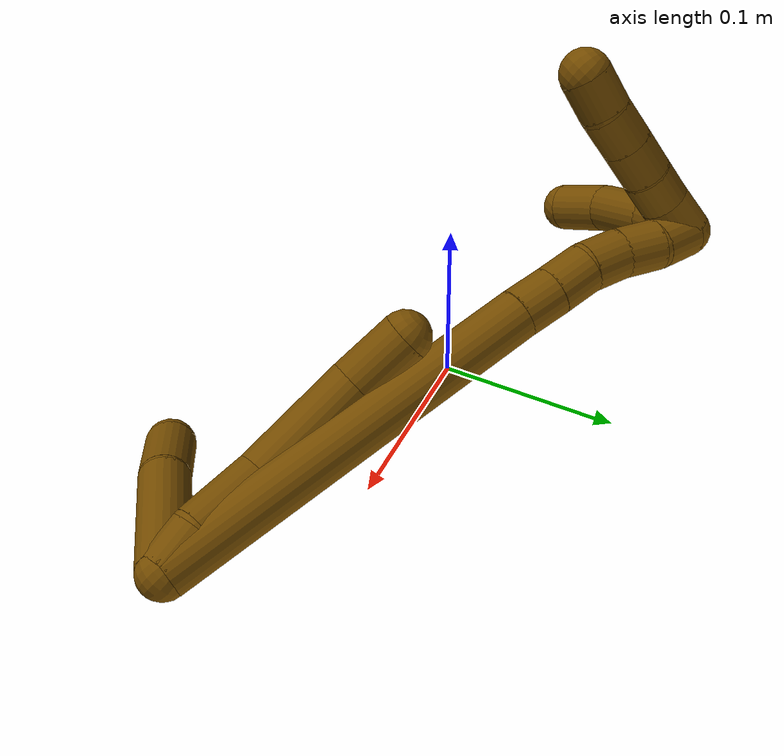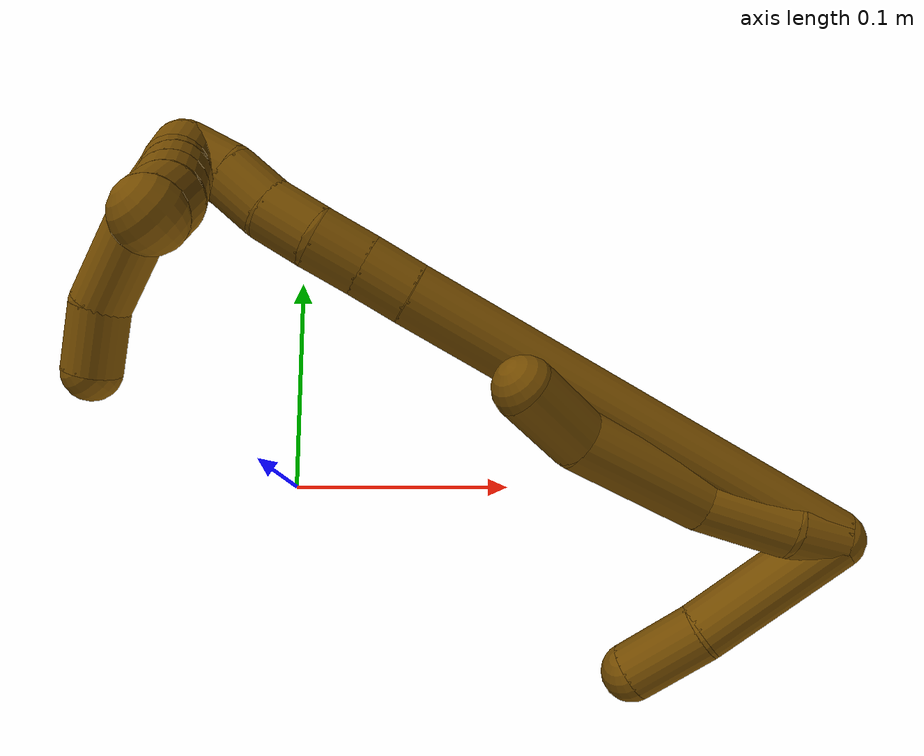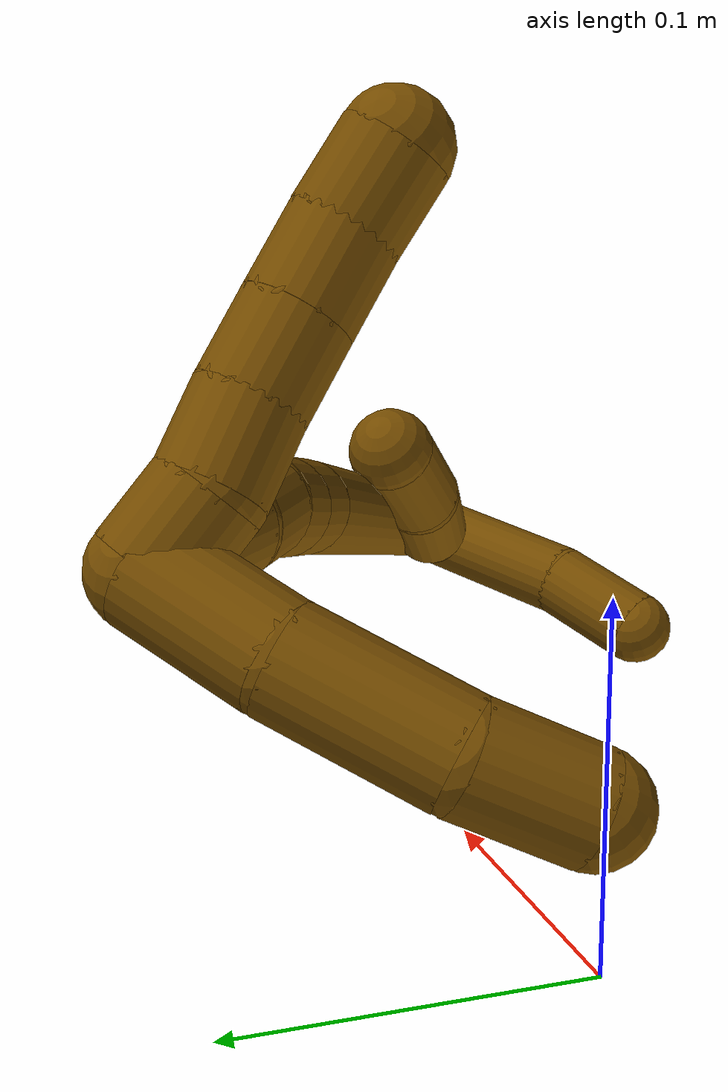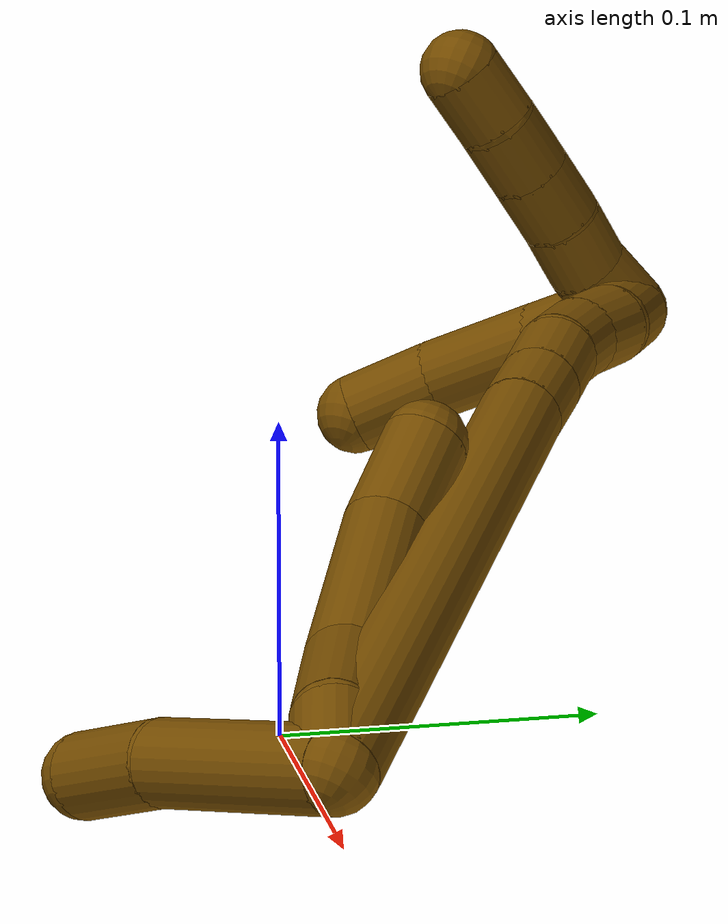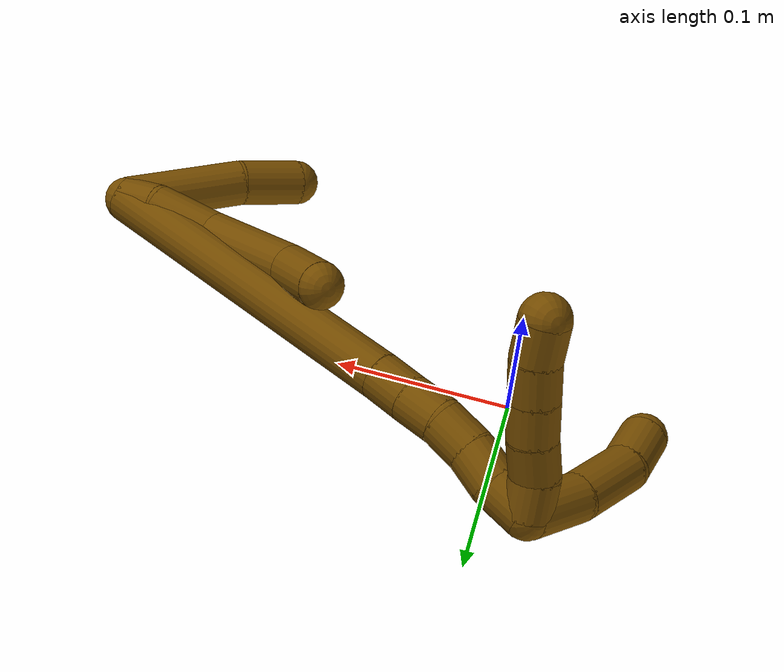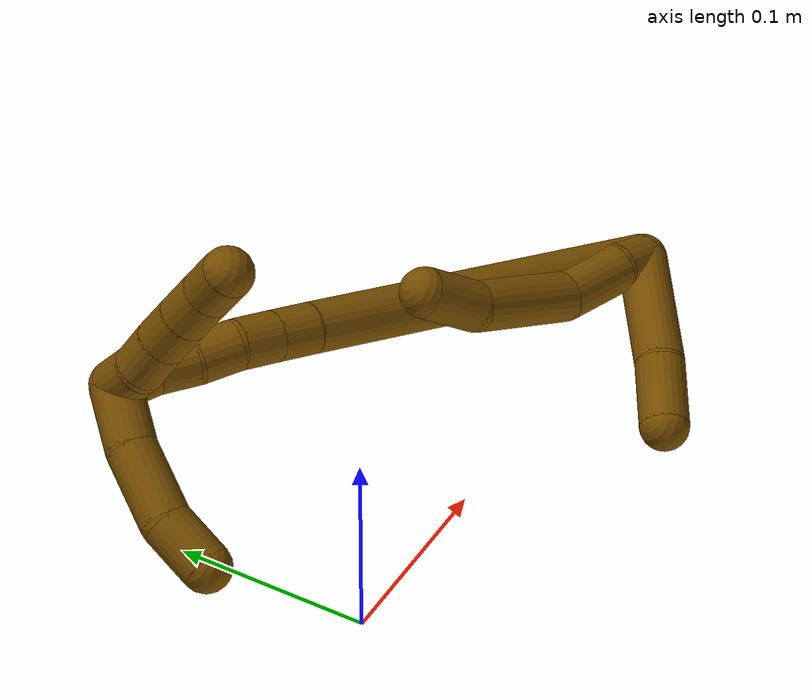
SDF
<sdf version="1.7">
 <world name="default">
  <model name="12">
   <static>0</static>
   <link name="12">
    <collision name="collision-cylinder-e_1_2_8">
     <pose>-0.006284 -0.000947 0.008793 0.107261 -0.61776 -0.034256</pose>
     <geometry><cylinder><radius>0.0125</radius><length>0.021697</length></cylinder></geometry>
     <surface>
      <friction><ode><mu>1.16</mu><mu2>1.16</mu2><slip1>0</slip1><slip2>0</slip2></ode></friction>
      <contact><ode><kp>1e+06</kp><kd>1</kd><max_vel>0</max_vel><min_depth>0.001</min_depth></ode></contact>
     </surface>
    </collision>
    <visual name="visual-cylinder-e_1_2_8">
     <pose>-0.006284 -0.000947 0.008793 0.107261 -0.61776 -0.034256</pose>
     <geometry><cylinder><radius>0.0125</radius><length>0.021697</length></cylinder></geometry>
     <material><ambient>0.466667 0.301961 0 1</ambient></material>
    </visual>
    <collision name="collision-cylinder-e_2_8_9">
     <pose>-0.025261 4e-06 0.031191 -0.138591 -0.745927 0.054301</pose>
     <geometry><cylinder><radius>0.0125</radius><length>0.037408</length></cylinder></geometry>
     <surface>
      <friction><ode><mu>1.16</mu><mu2>1.16</mu2><slip1>0</slip1><slip2>0</slip2></ode></friction>
      <contact><ode><kp>1e+06</kp><kd>1</kd><max_vel>0</max_vel><min_depth>0.001</min_depth></ode></contact>
     </surface>
    </collision>
    <visual name="visual-cylinder-e_2_8_9">
     <pose>-0.025261 4e-06 0.031191 -0.138591 -0.745927 0.054301</pose>
     <geometry><cylinder><radius>0.0125</radius><length>0.037408</length></cylinder></geometry>
     <material><ambient>0.466667 0.301961 0 1</ambient></material>
    </visual>
    <collision name="collision-cylinder-e_3_9_10">
     <pose>-0.051092 0.002686 0.071211 -0.029688 -0.46136 0.006973</pose>
     <geometry><cylinder><radius>0.0125</radius><length>0.059023</length></cylinder></geometry>
     <surface>
      <friction><ode><mu>1.16</mu><mu2>1.16</mu2><slip1>0</slip1><slip2>0</slip2></ode></friction>
      <contact><ode><kp>1e+06</kp><kd>1</kd><max_vel>0</max_vel><min_depth>0.001</min_depth></ode></contact>
     </surface>
    </collision>
    <visual name="visual-cylinder-e_3_9_10">
     <pose>-0.051092 0.002686 0.071211 -0.029688 -0.46136 0.006973</pose>
     <geometry><cylinder><radius>0.0125</radius><length>0.059023</length></cylinder></geometry>
     <material><ambient>0.466667 0.301961 0 1</ambient></material>
    </visual>
    <collision name="collision-cylinder-e_4_10_6">
     <pose>-0.066775 0.00434 0.113332 -0.055262 -0.160455 0.004444</pose>
     <geometry><cylinder><radius>0.0125</radius><length>0.031872</length></cylinder></geometry>
     <surface>
      <friction><ode><mu>1.16</mu><mu2>1.16</mu2><slip1>0</slip1><slip2>0</slip2></ode></friction>
      <contact><ode><kp>1e+06</kp><kd>1</kd><max_vel>0</max_vel><min_depth>0.001</min_depth></ode></contact>
     </surface>
    </collision>
    <visual name="visual-cylinder-e_4_10_6">
     <pose>-0.066775 0.00434 0.113332 -0.055262 -0.160455 0.004444</pose>
     <geometry><cylinder><radius>0.0125</radius><length>0.031872</length></cylinder></geometry>
     <material><ambient>0.466667 0.301961 0 1</ambient></material>
    </visual>
    <collision name="collision-cylinder-e_1_2_11">
     <pose>-0.029541 -0.014126 0.000456 1.53855 -1.12454 -1.09566</pose>
     <geometry><cylinder><radius>0.0125</radius><length>0.065496</length></cylinder></geometry>
     <surface>
      <friction><ode><mu>1.16</mu><mu2>1.16</mu2><slip1>0</slip1><slip2>0</slip2></ode></friction>
      <contact><ode><kp>1e+06</kp><kd>1</kd><max_vel>0</max_vel><min_depth>0.001</min_depth></ode></contact>
     </surface>
    </collision>
    <visual name="visual-cylinder-e_1_2_11">
     <pose>-0.029541 -0.014126 0.000456 1.53855 -1.12454 -1.09566</pose>
     <geometry><cylinder><radius>0.0125</radius><length>0.065496</length></cylinder></geometry>
     <material><ambient>0.466667 0.301961 0 1</ambient></material>
    </visual>
    <collision name="collision-cylinder-e_2_11_5">
     <pose>-0.075561 -0.033288 6.4e-05 1.7376 -1.27035 -1.43373</pose>
     <geometry><cylinder><radius>0.0125</radius><length>0.034504</length></cylinder></geometry>
     <surface>
      <friction><ode><mu>1.16</mu><mu2>1.16</mu2><slip1>0</slip1><slip2>0</slip2></ode></friction>
      <contact><ode><kp>1e+06</kp><kd>1</kd><max_vel>0</max_vel><min_depth>0.001</min_depth></ode></contact>
     </surface>
    </collision>
    <visual name="visual-cylinder-e_2_11_5">
     <pose>-0.075561 -0.033288 6.4e-05 1.7376 -1.27035 -1.43373</pose>
     <geometry><cylinder><radius>0.0125</radius><length>0.034504</length></cylinder></geometry>
     <material><ambient>0.466667 0.301961 0 1</ambient></material>
    </visual>
    <collision name="collision-cylinder-e_1_2_12">
     <pose>-0.049509 0.018242 0.083346 -0.215479 -0.525792 0.0582</pose>
     <geometry><cylinder><radius>0.0125</radius><length>0.197285</length></cylinder></geometry>
     <surface>
      <friction><ode><mu>1.16</mu><mu2>1.16</mu2><slip1>0</slip1><slip2>0</slip2></ode></friction>
      <contact><ode><kp>1e+06</kp><kd>1</kd><max_vel>0</max_vel><min_depth>0.001</min_depth></ode></contact>
     </surface>
    </collision>
    <visual name="visual-cylinder-e_1_2_12">
     <pose>-0.049509 0.018242 0.083346 -0.215479 -0.525792 0.0582</pose>
     <geometry><cylinder><radius>0.0125</radius><length>0.197285</length></cylinder></geometry>
     <material><ambient>0.466667 0.301961 0 1</ambient></material>
    </visual>
    <collision name="collision-cylinder-e_2_12_13">
     <pose>-0.104228 0.038777 0.175244 -0.261842 -0.531936 0.071711</pose>
     <geometry><cylinder><radius>0.0125</radius><length>0.020548</length></cylinder></geometry>
     <surface>
      <friction><ode><mu>1.16</mu><mu2>1.16</mu2><slip1>0</slip1><slip2>0</slip2></ode></friction>
      <contact><ode><kp>1e+06</kp><kd>1</kd><max_vel>0</max_vel><min_depth>0.001</min_depth></ode></contact>
     </surface>
    </collision>
    <visual name="visual-cylinder-e_2_12_13">
     <pose>-0.104228 0.038777 0.175244 -0.261842 -0.531936 0.071711</pose>
     <geometry><cylinder><radius>0.0125</radius><length>0.020548</length></cylinder></geometry>
     <material><ambient>0.466667 0.301961 0 1</ambient></material>
    </visual>
    <collision name="collision-cylinder-e_3_13_14">
     <pose>-0.114834 0.04316 0.192529 -0.234975 -0.541001 0.065436</pose>
     <geometry><cylinder><radius>0.0125</radius><length>0.020951</length></cylinder></geometry>
     <surface>
      <friction><ode><mu>1.16</mu><mu2>1.16</mu2><slip1>0</slip1><slip2>0</slip2></ode></friction>
      <contact><ode><kp>1e+06</kp><kd>1</kd><max_vel>0</max_vel><min_depth>0.001</min_depth></ode></contact>
     </surface>
    </collision>
    <visual name="visual-cylinder-e_3_13_14">
     <pose>-0.114834 0.04316 0.192529 -0.234975 -0.541001 0.065436</pose>
     <geometry><cylinder><radius>0.0125</radius><length>0.020951</length></cylinder></geometry>
     <material><ambient>0.466667 0.301961 0 1</ambient></material>
    </visual>
    <collision name="collision-cylinder-e_4_14_15">
     <pose>-0.126268 0.049167 0.208671 -0.486325 -0.624401 0.159792</pose>
     <geometry><cylinder><radius>0.0125</radius><length>0.020659</length></cylinder></geometry>
     <surface>
      <friction><ode><mu>1.16</mu><mu2>1.16</mu2><slip1>0</slip1><slip2>0</slip2></ode></friction>
      <contact><ode><kp>1e+06</kp><kd>1</kd><max_vel>0</max_vel><min_depth>0.001</min_depth></ode></contact>
     </surface>
    </collision>
    <visual name="visual-cylinder-e_4_14_15">
     <pose>-0.126268 0.049167 0.208671 -0.486325 -0.624401 0.159792</pose>
     <geometry><cylinder><radius>0.0125</radius><length>0.020659</length></cylinder></geometry>
     <material><ambient>0.466667 0.301961 0 1</ambient></material>
    </visual>
    <collision name="collision-cylinder-e_5_15_16">
     <pose>-0.137188 0.058298 0.223382 -0.620098 -0.498284 0.162669</pose>
     <geometry><cylinder><radius>0.0125</radius><length>0.020429</length></cylinder></geometry>
     <surface>
      <friction><ode><mu>1.16</mu><mu2>1.16</mu2><slip1>0</slip1><slip2>0</slip2></ode></friction>
      <contact><ode><kp>1e+06</kp><kd>1</kd><max_vel>0</max_vel><min_depth>0.001</min_depth></ode></contact>
     </surface>
    </collision>
    <visual name="visual-cylinder-e_5_15_16">
     <pose>-0.137188 0.058298 0.223382 -0.620098 -0.498284 0.162669</pose>
     <geometry><cylinder><radius>0.0125</radius><length>0.020429</length></cylinder></geometry>
     <material><ambient>0.466667 0.301961 0 1</ambient></material>
    </visual>
    <collision name="collision-cylinder-e_6_16_1">
     <pose>-0.148428 0.067074 0.237624 -0.474161 -0.683897 0.171581</pose>
     <geometry><cylinder><radius>0.0125</radius><length>0.020127</length></cylinder></geometry>
     <surface>
      <friction><ode><mu>1.16</mu><mu2>1.16</mu2><slip1>0</slip1><slip2>0</slip2></ode></friction>
      <contact><ode><kp>1e+06</kp><kd>1</kd><max_vel>0</max_vel><min_depth>0.001</min_depth></ode></contact>
     </surface>
    </collision>
    <visual name="visual-cylinder-e_6_16_1">
     <pose>-0.148428 0.067074 0.237624 -0.474161 -0.683897 0.171581</pose>
     <geometry><cylinder><radius>0.0125</radius><length>0.020127</length></cylinder></geometry>
     <material><ambient>0.466667 0.301961 0 1</ambient></material>
    </visual>
    <collision name="collision-cylinder-e_1_1_17">
     <pose>-0.169432 0.064515 0.240147 2.19589 -1.09491 -1.74526</pose>
     <geometry><cylinder><radius>0.0125</radius><length>0.032952</length></cylinder></geometry>
     <surface>
      <friction><ode><mu>1.16</mu><mu2>1.16</mu2><slip1>0</slip1><slip2>0</slip2></ode></friction>
      <contact><ode><kp>1e+06</kp><kd>1</kd><max_vel>0</max_vel><min_depth>0.001</min_depth></ode></contact>
     </surface>
    </collision>
    <visual name="visual-cylinder-e_1_1_17">
     <pose>-0.169432 0.064515 0.240147 2.19589 -1.09491 -1.74526</pose>
     <geometry><cylinder><radius>0.0125</radius><length>0.032952</length></cylinder></geometry>
     <material><ambient>0.466667 0.301961 0 1</ambient></material>
    </visual>
    <collision name="collision-cylinder-e_2_17_18">
     <pose>-0.199747 0.04947 0.228081 2.27941 -0.927252 -1.65416</pose>
     <geometry><cylinder><radius>0.0125</radius><length>0.039175</length></cylinder></geometry>
     <surface>
      <friction><ode><mu>1.16</mu><mu2>1.16</mu2><slip1>0</slip1><slip2>0</slip2></ode></friction>
      <contact><ode><kp>1e+06</kp><kd>1</kd><max_vel>0</max_vel><min_depth>0.001</min_depth></ode></contact>
     </surface>
    </collision>
    <visual name="visual-cylinder-e_2_17_18">
     <pose>-0.199747 0.04947 0.228081 2.27941 -0.927252 -1.65416</pose>
     <geometry><cylinder><radius>0.0125</radius><length>0.039175</length></cylinder></geometry>
     <material><ambient>0.466667 0.301961 0 1</ambient></material>
    </visual>
    <collision name="collision-cylinder-e_3_18_4">
     <pose>-0.223668 0.033081 0.212041 2.41457 -0.633605 -1.42262</pose>
     <geometry><cylinder><radius>0.0125</radius><length>0.027873</length></cylinder></geometry>
     <surface>
      <friction><ode><mu>1.16</mu><mu2>1.16</mu2><slip1>0</slip1><slip2>0</slip2></ode></friction>
      <contact><ode><kp>1e+06</kp><kd>1</kd><max_vel>0</max_vel><min_depth>0.001</min_depth></ode></contact>
     </surface>
    </collision>
    <visual name="visual-cylinder-e_3_18_4">
     <pose>-0.223668 0.033081 0.212041 2.41457 -0.633605 -1.42262</pose>
     <geometry><cylinder><radius>0.0125</radius><length>0.027873</length></cylinder></geometry>
     <material><ambient>0.466667 0.301961 0 1</ambient></material>
    </visual>
    <collision name="collision-cylinder-e_1_1_19">
     <pose>-0.152232 0.061109 0.246215 1.39916 0.258362 0.217782</pose>
     <geometry><cylinder><radius>0.0125</radius><length>0.02</length></cylinder></geometry>
     <surface>
      <friction><ode><mu>1.16</mu><mu2>1.16</mu2><slip1>0</slip1><slip2>0</slip2></ode></friction>
      <contact><ode><kp>1e+06</kp><kd>1</kd><max_vel>0</max_vel><min_depth>0.001</min_depth></ode></contact>
     </surface>
    </collision>
    <visual name="visual-cylinder-e_1_1_19">
     <pose>-0.152232 0.061109 0.246215 1.39916 0.258362 0.217782</pose>
     <geometry><cylinder><radius>0.0125</radius><length>0.02</length></cylinder></geometry>
     <material><ambient>0.466667 0.301961 0 1</ambient></material>
    </visual>
    <collision name="collision-cylinder-e_2_19_20">
     <pose>-0.144552 0.04319 0.249679 1.35805 0.538031 0.437873</pose>
     <geometry><cylinder><radius>0.0125</radius><length>0.02</length></cylinder></geometry>
     <surface>
      <friction><ode><mu>1.16</mu><mu2>1.16</mu2><slip1>0</slip1><slip2>0</slip2></ode></friction>
      <contact><ode><kp>1e+06</kp><kd>1</kd><max_vel>0</max_vel><min_depth>0.001</min_depth></ode></contact>
     </surface>
    </collision>
    <visual name="visual-cylinder-e_2_19_20">
     <pose>-0.144552 0.04319 0.249679 1.35805 0.538031 0.437873</pose>
     <geometry><cylinder><radius>0.0125</radius><length>0.02</length></cylinder></geometry>
     <material><ambient>0.466667 0.301961 0 1</ambient></material>
    </visual>
    <collision name="collision-cylinder-e_3_20_21">
     <pose>-0.135148 0.02597 0.253434 1.3543 0.442305 0.357646</pose>
     <geometry><cylinder><radius>0.0125</radius><length>0.02</length></cylinder></geometry>
     <surface>
      <friction><ode><mu>1.16</mu><mu2>1.16</mu2><slip1>0</slip1><slip2>0</slip2></ode></friction>
      <contact><ode><kp>1e+06</kp><kd>1</kd><max_vel>0</max_vel><min_depth>0.001</min_depth></ode></contact>
     </surface>
    </collision>
    <visual name="visual-cylinder-e_3_20_21">
     <pose>-0.135148 0.02597 0.253434 1.3543 0.442305 0.357646</pose>
     <geometry><cylinder><radius>0.0125</radius><length>0.02</length></cylinder></geometry>
     <material><ambient>0.466667 0.301961 0 1</ambient></material>
    </visual>
    <collision name="collision-cylinder-e_4_21_22">
     <pose>-0.126618 0.008287 0.257251 1.36208 0.438927 0.357661</pose>
     <geometry><cylinder><radius>0.0125</radius><length>0.02</length></cylinder></geometry>
     <surface>
      <friction><ode><mu>1.16</mu><mu2>1.16</mu2><slip1>0</slip1><slip2>0</slip2></ode></friction>
      <contact><ode><kp>1e+06</kp><kd>1</kd><max_vel>0</max_vel><min_depth>0.001</min_depth></ode></contact>
     </surface>
    </collision>
    <visual name="visual-cylinder-e_4_21_22">
     <pose>-0.126618 0.008287 0.257251 1.36208 0.438927 0.357661</pose>
     <geometry><cylinder><radius>0.0125</radius><length>0.02</length></cylinder></geometry>
     <material><ambient>0.466667 0.301961 0 1</ambient></material>
    </visual>
    <collision name="collision-cylinder-e_5_22_3">
     <pose>-0.119534 -0.00975 0.261894 1.27806 0.287378 0.214192</pose>
     <geometry><cylinder><radius>0.0125</radius><length>0.02</length></cylinder></geometry>
     <surface>
      <friction><ode><mu>1.16</mu><mu2>1.16</mu2><slip1>0</slip1><slip2>0</slip2></ode></friction>
      <contact><ode><kp>1e+06</kp><kd>1</kd><max_vel>0</max_vel><min_depth>0.001</min_depth></ode></contact>
     </surface>
    </collision>
    <visual name="visual-cylinder-e_5_22_3">
     <pose>-0.119534 -0.00975 0.261894 1.27806 0.287378 0.214192</pose>
     <geometry><cylinder><radius>0.0125</radius><length>0.02</length></cylinder></geometry>
     <material><ambient>0.466667 0.301961 0 1</ambient></material>
    </visual>
    <collision name="collision-sphere-3">
     <pose>-0.116699 -0.018932 0.264661 0 -0 0</pose>
     <geometry><sphere><radius>0.0125</radius></sphere></geometry>
     <surface>
      <friction><ode><mu>1.16</mu><mu2>1.16</mu2><slip1>0</slip1><slip2>0</slip2></ode></friction>
      <contact><ode><kp>1e+06</kp><kd>1</kd><max_vel>0</max_vel><min_depth>0.001</min_depth></ode></contact>
     </surface>
    </collision>
    <visual name="visual-sphere-3">
     <pose>-0.116699 -0.018932 0.264661 0 -0 0</pose>
     <geometry><sphere><radius>0.0125</radius></sphere></geometry>
     <material><ambient>0.466667 0.301961 0 1</ambient></material>
    </visual>
    <collision name="collision-sphere-22">
     <pose>-0.122368 -0.000568 0.259126 0 -0 0</pose>
     <geometry><sphere><radius>0.0125</radius></sphere></geometry>
     <surface>
      <friction><ode><mu>1.16</mu><mu2>1.16</mu2><slip1>0</slip1><slip2>0</slip2></ode></friction>
      <contact><ode><kp>1e+06</kp><kd>1</kd><max_vel>0</max_vel><min_depth>0.001</min_depth></ode></contact>
     </surface>
    </collision>
    <visual name="visual-sphere-22">
     <pose>-0.122368 -0.000568 0.259126 0 -0 0</pose>
     <geometry><sphere><radius>0.0125</radius></sphere></geometry>
     <material><ambient>0.466667 0.301961 0 1</ambient></material>
    </visual>
    <collision name="collision-sphere-21">
     <pose>-0.130867 0.017143 0.255375 0 -0 0</pose>
     <geometry><sphere><radius>0.0125</radius></sphere></geometry>
     <surface>
      <friction><ode><mu>1.16</mu><mu2>1.16</mu2><slip1>0</slip1><slip2>0</slip2></ode></friction>
      <contact><ode><kp>1e+06</kp><kd>1</kd><max_vel>0</max_vel><min_depth>0.001</min_depth></ode></contact>
     </surface>
    </collision>
    <visual name="visual-sphere-21">
     <pose>-0.130867 0.017143 0.255375 0 -0 0</pose>
     <geometry><sphere><radius>0.0125</radius></sphere></geometry>
     <material><ambient>0.466667 0.301961 0 1</ambient></material>
    </visual>
    <collision name="collision-sphere-20">
     <pose>-0.139428 0.034796 0.251492 0 -0 0</pose>
     <geometry><sphere><radius>0.0125</radius></sphere></geometry>
     <surface>
      <friction><ode><mu>1.16</mu><mu2>1.16</mu2><slip1>0</slip1><slip2>0</slip2></ode></friction>
      <contact><ode><kp>1e+06</kp><kd>1</kd><max_vel>0</max_vel><min_depth>0.001</min_depth></ode></contact>
     </surface>
    </collision>
    <visual name="visual-sphere-20">
     <pose>-0.139428 0.034796 0.251492 0 -0 0</pose>
     <geometry><sphere><radius>0.0125</radius></sphere></geometry>
     <material><ambient>0.466667 0.301961 0 1</ambient></material>
    </visual>
    <collision name="collision-sphere-19">
     <pose>-0.149677 0.051583 0.247866 0 -0 0</pose>
     <geometry><sphere><radius>0.0125</radius></sphere></geometry>
     <surface>
      <friction><ode><mu>1.16</mu><mu2>1.16</mu2><slip1>0</slip1><slip2>0</slip2></ode></friction>
      <contact><ode><kp>1e+06</kp><kd>1</kd><max_vel>0</max_vel><min_depth>0.001</min_depth></ode></contact>
     </surface>
    </collision>
    <visual name="visual-sphere-19">
     <pose>-0.149677 0.051583 0.247866 0 -0 0</pose>
     <geometry><sphere><radius>0.0125</radius></sphere></geometry>
     <material><ambient>0.466667 0.301961 0 1</ambient></material>
    </visual>
    <collision name="collision-sphere-11">
     <pose>-0.059082 -0.028253 0.000911 0 -0 0</pose>
     <geometry><sphere><radius>0.0125</radius></sphere></geometry>
     <surface>
      <friction><ode><mu>1.16</mu><mu2>1.16</mu2><slip1>0</slip1><slip2>0</slip2></ode></friction>
      <contact><ode><kp>1e+06</kp><kd>1</kd><max_vel>0</max_vel><min_depth>0.001</min_depth></ode></contact>
     </surface>
    </collision>
    <visual name="visual-sphere-11">
     <pose>-0.059082 -0.028253 0.000911 0 -0 0</pose>
     <geometry><sphere><radius>0.0125</radius></sphere></geometry>
     <material><ambient>0.466667 0.301961 0 1</ambient></material>
    </visual>
    <collision name="collision-sphere-6">
     <pose>-0.069321 0.005209 0.12904 0 -0 0</pose>
     <geometry><sphere><radius>0.0125</radius></sphere></geometry>
     <surface>
      <friction><ode><mu>1.16</mu><mu2>1.16</mu2><slip1>0</slip1><slip2>0</slip2></ode></friction>
      <contact><ode><kp>1e+06</kp><kd>1</kd><max_vel>0</max_vel><min_depth>0.001</min_depth></ode></contact>
     </surface>
    </collision>
    <visual name="visual-sphere-6">
     <pose>-0.069321 0.005209 0.12904 0 -0 0</pose>
     <geometry><sphere><radius>0.0125</radius></sphere></geometry>
     <material><ambient>0.466667 0.301961 0 1</ambient></material>
    </visual>
    <collision name="collision-sphere-10">
     <pose>-0.064229 0.003471 0.097625 0 -0 0</pose>
     <geometry><sphere><radius>0.0125</radius></sphere></geometry>
     <surface>
      <friction><ode><mu>1.16</mu><mu2>1.16</mu2><slip1>0</slip1><slip2>0</slip2></ode></friction>
      <contact><ode><kp>1e+06</kp><kd>1</kd><max_vel>0</max_vel><min_depth>0.001</min_depth></ode></contact>
     </surface>
    </collision>
    <visual name="visual-sphere-10">
     <pose>-0.064229 0.003471 0.097625 0 -0 0</pose>
     <geometry><sphere><radius>0.0125</radius></sphere></geometry>
     <material><ambient>0.466667 0.301961 0 1</ambient></material>
    </visual>
    <collision name="collision-sphere-9">
     <pose>-0.037954 0.001902 0.044797 0 -0 0</pose>
     <geometry><sphere><radius>0.0125</radius></sphere></geometry>
     <surface>
      <friction><ode><mu>1.16</mu><mu2>1.16</mu2><slip1>0</slip1><slip2>0</slip2></ode></friction>
      <contact><ode><kp>1e+06</kp><kd>1</kd><max_vel>0</max_vel><min_depth>0.001</min_depth></ode></contact>
     </surface>
    </collision>
    <visual name="visual-sphere-9">
     <pose>-0.037954 0.001902 0.044797 0 -0 0</pose>
     <geometry><sphere><radius>0.0125</radius></sphere></geometry>
     <material><ambient>0.466667 0.301961 0 1</ambient></material>
    </visual>
    <collision name="collision-sphere-2">
     <geometry><sphere><radius>0.0125</radius></sphere></geometry>
     <surface>
      <friction><ode><mu>1.16</mu><mu2>1.16</mu2><slip1>0</slip1><slip2>0</slip2></ode></friction>
      <contact><ode><kp>1e+06</kp><kd>1</kd><max_vel>0</max_vel><min_depth>0.001</min_depth></ode></contact>
     </surface>
    </collision>
    <visual name="visual-sphere-2">
     <geometry><sphere><radius>0.0125</radius></sphere></geometry>
     <material><ambient>0.466667 0.301961 0 1</ambient></material>
    </visual>
    <collision name="collision-sphere-8">
     <pose>-0.012567 -0.001894 0.017585 0 -0 0</pose>
     <geometry><sphere><radius>0.0125</radius></sphere></geometry>
     <surface>
      <friction><ode><mu>1.16</mu><mu2>1.16</mu2><slip1>0</slip1><slip2>0</slip2></ode></friction>
      <contact><ode><kp>1e+06</kp><kd>1</kd><max_vel>0</max_vel><min_depth>0.001</min_depth></ode></contact>
     </surface>
    </collision>
    <visual name="visual-sphere-8">
     <pose>-0.012567 -0.001894 0.017585 0 -0 0</pose>
     <geometry><sphere><radius>0.0125</radius></sphere></geometry>
     <material><ambient>0.466667 0.301961 0 1</ambient></material>
    </visual>
    <collision name="collision-sphere-5">
     <pose>-0.09204 -0.038322 -0.000784 0 -0 0</pose>
     <geometry><sphere><radius>0.0125</radius></sphere></geometry>
     <surface>
      <friction><ode><mu>1.16</mu><mu2>1.16</mu2><slip1>0</slip1><slip2>0</slip2></ode></friction>
      <contact><ode><kp>1e+06</kp><kd>1</kd><max_vel>0</max_vel><min_depth>0.001</min_depth></ode></contact>
     </surface>
    </collision>
    <visual name="visual-sphere-5">
     <pose>-0.09204 -0.038322 -0.000784 0 -0 0</pose>
     <geometry><sphere><radius>0.0125</radius></sphere></geometry>
     <material><ambient>0.466667 0.301961 0 1</ambient></material>
    </visual>
    <collision name="collision-sphere-12">
     <pose>-0.099017 0.036485 0.166691 0 -0 0</pose>
     <geometry><sphere><radius>0.0125</radius></sphere></geometry>
     <surface>
      <friction><ode><mu>1.16</mu><mu2>1.16</mu2><slip1>0</slip1><slip2>0</slip2></ode></friction>
      <contact><ode><kp>1e+06</kp><kd>1</kd><max_vel>0</max_vel><min_depth>0.001</min_depth></ode></contact>
     </surface>
    </collision>
    <visual name="visual-sphere-12">
     <pose>-0.099017 0.036485 0.166691 0 -0 0</pose>
     <geometry><sphere><radius>0.0125</radius></sphere></geometry>
     <material><ambient>0.466667 0.301961 0 1</ambient></material>
    </visual>
    <collision name="collision-sphere-13">
     <pose>-0.109439 0.041069 0.183796 0 -0 0</pose>
     <geometry><sphere><radius>0.0125</radius></sphere></geometry>
     <surface>
      <friction><ode><mu>1.16</mu><mu2>1.16</mu2><slip1>0</slip1><slip2>0</slip2></ode></friction>
      <contact><ode><kp>1e+06</kp><kd>1</kd><max_vel>0</max_vel><min_depth>0.001</min_depth></ode></contact>
     </surface>
    </collision>
    <visual name="visual-sphere-13">
     <pose>-0.109439 0.041069 0.183796 0 -0 0</pose>
     <geometry><sphere><radius>0.0125</radius></sphere></geometry>
     <material><ambient>0.466667 0.301961 0 1</ambient></material>
    </visual>
    <collision name="collision-sphere-14">
     <pose>-0.120229 0.04525 0.201262 0 -0 0</pose>
     <geometry><sphere><radius>0.0125</radius></sphere></geometry>
     <surface>
      <friction><ode><mu>1.16</mu><mu2>1.16</mu2><slip1>0</slip1><slip2>0</slip2></ode></friction>
      <contact><ode><kp>1e+06</kp><kd>1</kd><max_vel>0</max_vel><min_depth>0.001</min_depth></ode></contact>
     </surface>
    </collision>
    <visual name="visual-sphere-14">
     <pose>-0.120229 0.04525 0.201262 0 -0 0</pose>
     <geometry><sphere><radius>0.0125</radius></sphere></geometry>
     <material><ambient>0.466667 0.301961 0 1</ambient></material>
    </visual>
    <collision name="collision-sphere-15">
     <pose>-0.132306 0.053084 0.21608 0 -0 0</pose>
     <geometry><sphere><radius>0.0125</radius></sphere></geometry>
     <surface>
      <friction><ode><mu>1.16</mu><mu2>1.16</mu2><slip1>0</slip1><slip2>0</slip2></ode></friction>
      <contact><ode><kp>1e+06</kp><kd>1</kd><max_vel>0</max_vel><min_depth>0.001</min_depth></ode></contact>
     </surface>
    </collision>
    <visual name="visual-sphere-15">
     <pose>-0.132306 0.053084 0.21608 0 -0 0</pose>
     <geometry><sphere><radius>0.0125</radius></sphere></geometry>
     <material><ambient>0.466667 0.301961 0 1</ambient></material>
    </visual>
    <collision name="collision-sphere-16">
     <pose>-0.14207 0.063512 0.230684 0 -0 0</pose>
     <geometry><sphere><radius>0.0125</radius></sphere></geometry>
     <surface>
      <friction><ode><mu>1.16</mu><mu2>1.16</mu2><slip1>0</slip1><slip2>0</slip2></ode></friction>
      <contact><ode><kp>1e+06</kp><kd>1</kd><max_vel>0</max_vel><min_depth>0.001</min_depth></ode></contact>
     </surface>
    </collision>
    <visual name="visual-sphere-16">
     <pose>-0.14207 0.063512 0.230684 0 -0 0</pose>
     <geometry><sphere><radius>0.0125</radius></sphere></geometry>
     <material><ambient>0.466667 0.301961 0 1</ambient></material>
    </visual>
    <collision name="collision-sphere-1">
     <pose>-0.154787 0.070636 0.244564 0 -0 0</pose>
     <geometry><sphere><radius>0.0125</radius></sphere></geometry>
     <surface>
      <friction><ode><mu>1.16</mu><mu2>1.16</mu2><slip1>0</slip1><slip2>0</slip2></ode></friction>
      <contact><ode><kp>1e+06</kp><kd>1</kd><max_vel>0</max_vel><min_depth>0.001</min_depth></ode></contact>
     </surface>
    </collision>
    <visual name="visual-sphere-1">
     <pose>-0.154787 0.070636 0.244564 0 -0 0</pose>
     <geometry><sphere><radius>0.0125</radius></sphere></geometry>
     <material><ambient>0.466667 0.301961 0 1</ambient></material>
    </visual>
    <collision name="collision-sphere-18">
     <pose>-0.215417 0.040546 0.220432 0 -0 0</pose>
     <geometry><sphere><radius>0.0125</radius></sphere></geometry>
     <surface>
      <friction><ode><mu>1.16</mu><mu2>1.16</mu2><slip1>0</slip1><slip2>0</slip2></ode></friction>
      <contact><ode><kp>1e+06</kp><kd>1</kd><max_vel>0</max_vel><min_depth>0.001</min_depth></ode></contact>
     </surface>
    </collision>
    <visual name="visual-sphere-18">
     <pose>-0.215417 0.040546 0.220432 0 -0 0</pose>
     <geometry><sphere><radius>0.0125</radius></sphere></geometry>
     <material><ambient>0.466667 0.301961 0 1</ambient></material>
    </visual>
    <collision name="collision-sphere-17">
     <pose>-0.184078 0.058394 0.23573 0 -0 0</pose>
     <geometry><sphere><radius>0.0125</radius></sphere></geometry>
     <surface>
      <friction><ode><mu>1.16</mu><mu2>1.16</mu2><slip1>0</slip1><slip2>0</slip2></ode></friction>
      <contact><ode><kp>1e+06</kp><kd>1</kd><max_vel>0</max_vel><min_depth>0.001</min_depth></ode></contact>
     </surface>
    </collision>
    <visual name="visual-sphere-17">
     <pose>-0.184078 0.058394 0.23573 0 -0 0</pose>
     <geometry><sphere><radius>0.0125</radius></sphere></geometry>
     <material><ambient>0.466667 0.301961 0 1</ambient></material>
    </visual>
    <collision name="collision-sphere-4">
     <pose>-0.231919 0.025617 0.203649 0 -0 0</pose>
     <geometry><sphere><radius>0.0125</radius></sphere></geometry>
     <surface>
      <friction><ode><mu>1.16</mu><mu2>1.16</mu2><slip1>0</slip1><slip2>0</slip2></ode></friction>
      <contact><ode><kp>1e+06</kp><kd>1</kd><max_vel>0</max_vel><min_depth>0.001</min_depth></ode></contact>
     </surface>
    </collision>
    <visual name="visual-sphere-4">
     <pose>-0.231919 0.025617 0.203649 0 -0 0</pose>
     <geometry><sphere><radius>0.0125</radius></sphere></geometry>
     <material><ambient>0.466667 0.301961 0 1</ambient></material>
    </visual>
    <inertial>
     <pose>-0.088913 0.019495 0.126757 0 -0 0</pose>
     <mass>0.75</mass>
     <inertia>
      <ixx>0.000592</ixx>
      <ixy>0</ixy>
      <ixz>0</ixz>
      <iyy>0.000719</iyy>
      <iyz>0</iyz>
      <izz>0.000309</izz>
     </inertia>
    </inertial>
   </link>
   <pose>0.229234 -0.028038 0.072416 -0.677457 -0.525692 0.280331</pose>
  </model>
 </world>
</sdf>
